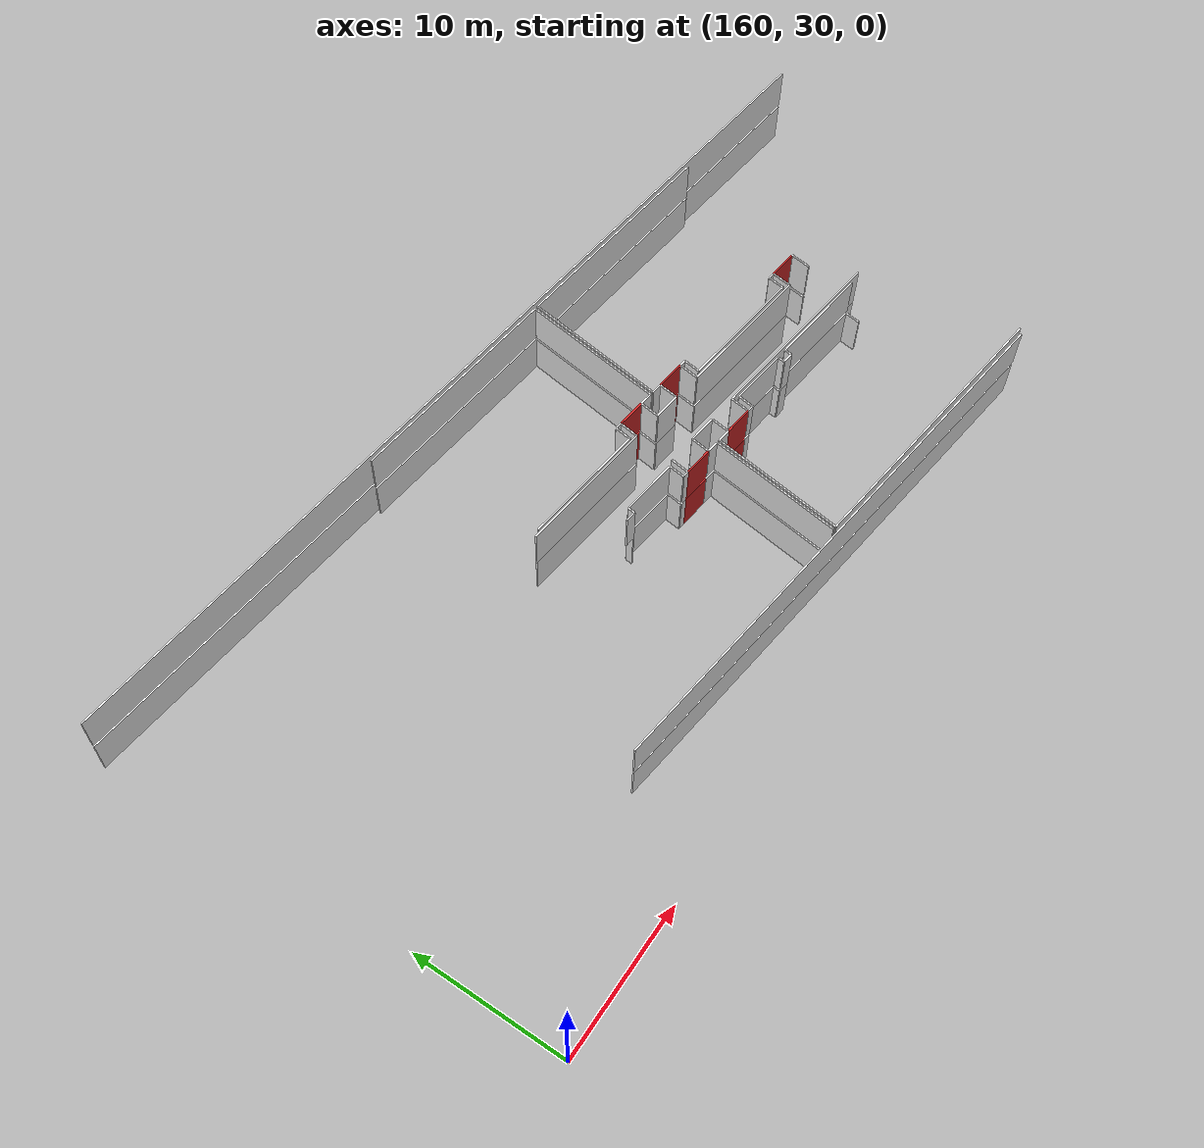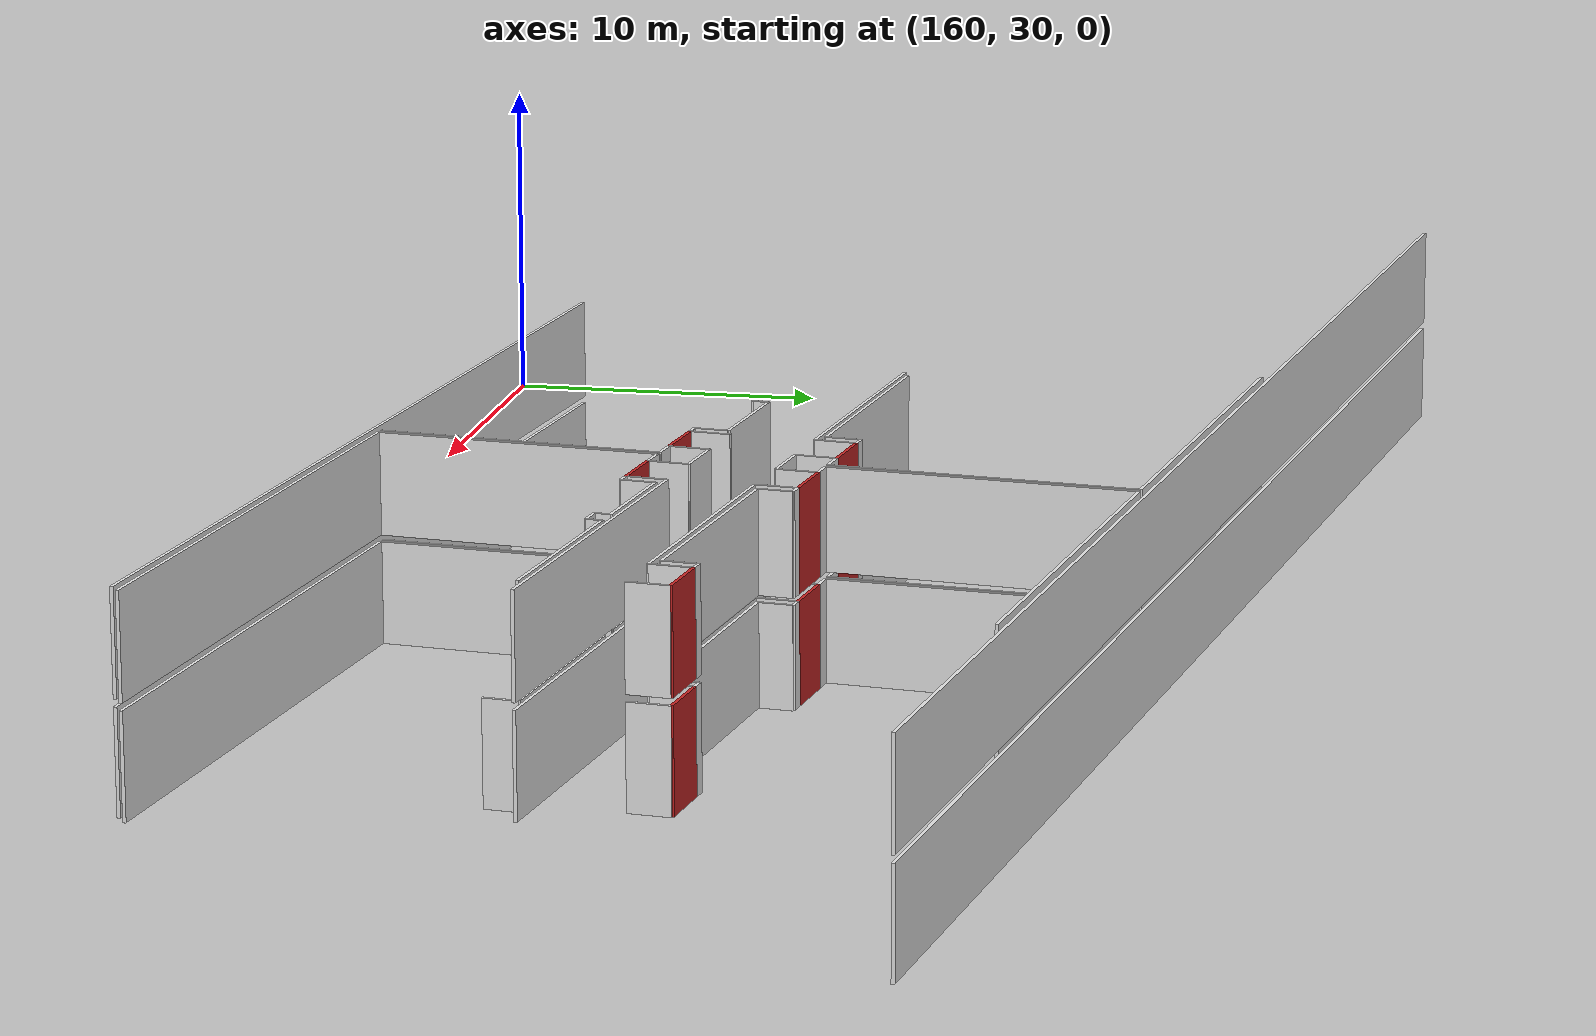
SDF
<sdf version="1.6">
 <world name="default">
  <model name="wall_191.0_47.1_0.0">
   <static>true</static>
   <pose>190.97500000000582 47.06499999994412 1.5 0 0 3.02480805813934</pose>
   <link name="link">
    <visual name="visual">
     <geometry><box><size>1.8022763383869123 0.1 3</size></box></geometry>
     <material>
      <script><uri>file://media/materials/scripts/gazebo.material</uri><name>Gazebo/Red</name></script>
     </material>
    </visual>
   </link>
  </model>
  <model name="wall_194.4_46.6_0.0">
   <static>true</static>
   <pose>194.41500000000815 46.64999999990687 1.5 0 0 3.0193009299849303</pose>
   <link name="link">
    <visual name="visual">
     <geometry><box><size>1.8034688796345346 0.1 3</size></box></geometry>
     <material>
      <script><uri>file://media/materials/scripts/gazebo.material</uri><name>Gazebo/Red</name></script>
     </material>
    </visual>
   </link>
  </model>
  <model name="wall_204.7_45.4_0.0">
   <static>true</static>
   <pose>204.74499999999534 45.40499999979511 1.5 0 0 3.0248080581431034</pose>
   <link name="link">
    <visual name="visual">
     <geometry><box><size>1.8022763384447233 0.1 3</size></box></geometry>
     <material>
      <script><uri>file://media/materials/scripts/gazebo.material</uri><name>Gazebo/Red</name></script>
     </material>
    </visual>
   </link>
  </model>
  <model name="wall_190.5_42.2_0.0">
   <static>true</static>
   <pose>190.5 42.18999999994412 1.5 0 0 -0.12161902311549111</pose>
   <link name="link">
    <visual name="visual">
     <geometry><box><size>1.8133946068224918 0.1 3</size></box></geometry>
     <material>
      <script><uri>file://media/materials/scripts/gazebo.material</uri><name>Gazebo/Red</name></script>
     </material>
    </visual>
   </link>
  </model>
  <model name="wall_194.0_41.8_0.0">
   <static>true</static>
   <pose>194.0350000000035 41.765000000130385 1.5 0 0 -0.11678459545045303</pose>
   <link name="link">
    <visual name="visual">
     <geometry><box><size>1.8022763383869123 0.1 3</size></box></geometry>
     <material>
      <script><uri>file://media/materials/scripts/gazebo.material</uri><name>Gazebo/Red</name></script>
     </material>
    </visual>
   </link>
  </model>
  <model name="wall_193.2_51.3_0.0">
   <static>true</static>
   <pose>193.20999999999185 51.294999999925494 1.5 0 0 -1.6919586614511988</pose>
   <link name="link">
    <visual name="visual">
     <geometry><box><size>8.93550782004122 0.1 3</size></box></geometry>
     <material>
      <script><uri>file://media/materials/scripts/gazebo.material</uri><name>Gazebo/White</name></script>
     </material>
    </visual>
   </link>
  </model>
  <model name="wall_192.3_46.9_0.0">
   <static>true</static>
   <pose>192.26999999998952 46.90999999991618 1.5 0 0 3.0172376589266166</pose>
   <link name="link">
    <visual name="visual">
     <geometry><box><size>0.806225774829855 0.1 3</size></box></geometry>
     <material>
      <script><uri>file://media/materials/scripts/gazebo.material</uri><name>Gazebo/White</name></script>
     </material>
    </visual>
   </link>
  </model>
  <model name="wall_189.9_47.2_0.0">
   <static>true</static>
   <pose>189.88000000000466 47.19500000006519 1.5 0 0 3.01723765836245</pose>
   <link name="link">
    <visual name="visual">
     <geometry><box><size>0.4031128874726857 0.1 3</size></box></geometry>
     <material>
      <script><uri>file://media/materials/scripts/gazebo.material</uri><name>Gazebo/White</name></script>
     </material>
    </visual>
   </link>
  </model>
  <model name="wall_189.6_46.7_0.0">
   <static>true</static>
   <pose>189.6149999999907 46.71000000019558 1.5 0 0 -1.6975638618984608</pose>
   <link name="link">
    <visual name="visual">
     <geometry><box><size>1.028250942153329 0.1 3</size></box></geometry>
     <material>
      <script><uri>file://media/materials/scripts/gazebo.material</uri><name>Gazebo/White</name></script>
     </material>
    </visual>
   </link>
  </model>
  <model name="wall_185.7_46.7_0.0">
   <static>true</static>
   <pose>185.67999999999302 46.66500000003725 1.5 0 0 3.0220108925195217</pose>
   <link name="link">
    <visual name="visual">
     <geometry><box><size>7.79567187606697 0.1 3</size></box></geometry>
     <material>
      <script><uri>file://media/materials/scripts/gazebo.material</uri><name>Gazebo/White</name></script>
     </material>
    </visual>
   </link>
  </model>
  <model name="wall_186.9_56.6_0.0">
   <static>true</static>
   <pose>186.89000000001397 56.56000000005588 1.5 0 0 -0.12040599336592878</pose>
   <link name="link">
    <visual name="visual">
     <geometry><box><size>13.820057886989042 0.1 3</size></box></geometry>
     <material>
      <script><uri>file://media/materials/scripts/gazebo.material</uri><name>Gazebo/White</name></script>
     </material>
    </visual>
   </link>
  </model>
  <model name="wall_203.7_45.5_0.0">
   <static>true</static>
   <pose>203.65499999999884 45.53499999991618 1.5 0 0 3.0140830946554305</pose>
   <link name="link">
    <visual name="visual">
     <geometry><box><size>0.39319206501840065 0.1 3</size></box></geometry>
     <material>
      <script><uri>file://media/materials/scripts/gazebo.material</uri><name>Gazebo/White</name></script>
     </material>
    </visual>
   </link>
  </model>
  <model name="wall_203.4_45.1_0.0">
   <static>true</static>
   <pose>203.39500000001863 45.050000000046566 1.5 0 0 -1.6975638618984608</pose>
   <link name="link">
    <visual name="visual">
     <geometry><box><size>1.028250942153329 0.1 3</size></box></geometry>
     <material>
      <script><uri>file://media/materials/scripts/gazebo.material</uri><name>Gazebo/White</name></script>
     </material>
    </visual>
   </link>
  </model>
  <model name="wall_199.5_45.0_0.0">
   <static>true</static>
   <pose>199.46000000002095 45.00500000012107 1.5 0 0 3.022010892460215</pose>
   <link name="link">
    <visual name="visual">
     <geometry><box><size>7.795671876122522 0.1 3</size></box></geometry>
     <material>
      <script><uri>file://media/materials/scripts/gazebo.material</uri><name>Gazebo/White</name></script>
     </material>
    </visual>
   </link>
  </model>
  <model name="wall_195.7_46.0_0.0">
   <static>true</static>
   <pose>195.65000000002328 45.980000000214204 1.5 0 0 1.4536875822346544</pose>
   <link name="link">
    <visual name="visual">
     <geometry><box><size>1.0270345661353761 0.1 3</size></box></geometry>
     <material>
      <script><uri>file://media/materials/scripts/gazebo.material</uri><name>Gazebo/White</name></script>
     </material>
    </visual>
   </link>
  </model>
  <model name="wall_195.5_46.5_0.0">
   <static>true</static>
   <pose>195.5100000000093 46.515000000130385 1.5 0 0 3.017237659508693</pose>
   <link name="link">
    <visual name="visual">
     <geometry><box><size>0.4031128874149275 0.1 3</size></box></geometry>
     <material>
      <script><uri>file://media/materials/scripts/gazebo.material</uri><name>Gazebo/White</name></script>
     </material>
    </visual>
   </link>
  </model>
  <model name="wall_193.2_46.8_0.0">
   <static>true</static>
   <pose>193.19500000000698 46.794999999925494 1.5 0 0 3.034313797491963</pose>
   <link name="link">
    <visual name="visual">
     <geometry><box><size>0.6537583652023057 0.1 3</size></box></geometry>
     <material>
      <script><uri>file://media/materials/scripts/gazebo.material</uri><name>Gazebo/White</name></script>
     </material>
    </visual>
   </link>
  </model>
  <model name="wall_193.4_51.3_0.0">
   <static>true</static>
   <pose>193.4100000000035 51.27000000001863 1.5 0 0 1.4497691069823746</pose>
   <link name="link">
    <visual name="visual">
     <geometry><box><size>8.945434589669212 0.1 3</size></box></geometry>
     <material>
      <script><uri>file://media/materials/scripts/gazebo.material</uri><name>Gazebo/White</name></script>
     </material>
    </visual>
   </link>
  </model>
  <model name="wall_200.8_54.9_0.0">
   <static>true</static>
   <pose>200.80499999999302 54.88500000000931 1.5 0 0 -0.1197740511061136</pose>
   <link name="link">
    <visual name="visual">
     <geometry><box><size>13.808931892028117 0.1 3</size></box></geometry>
     <material>
      <script><uri>file://media/materials/scripts/gazebo.material</uri><name>Gazebo/White</name></script>
     </material>
    </visual>
   </link>
  </model>
  <model name="wall_200.9_42.1_0.0">
   <static>true</static>
   <pose>200.94500000000698 42.140000000130385 1.5 0 0 3.0211217461725024</pose>
   <link name="link">
    <visual name="visual">
     <geometry><box><size>11.815637942969962 0.1 3</size></box></geometry>
     <material>
      <script><uri>file://media/materials/scripts/gazebo.material</uri><name>Gazebo/White</name></script>
     </material>
    </visual>
   </link>
  </model>
  <model name="wall_195.0_42.3_0.0">
   <static>true</static>
   <pose>195.00500000000466 42.25500000012107 1.5 0 0 -1.696185447161499</pose>
   <link name="link">
    <visual name="visual">
     <geometry><box><size>1.1994165247627664 0.1 3</size></box></geometry>
     <material>
      <script><uri>file://media/materials/scripts/gazebo.material</uri><name>Gazebo/White</name></script>
     </material>
    </visual>
   </link>
  </model>
  <model name="wall_193.2_42.5_0.0">
   <static>true</static>
   <pose>193.2149999999965 42.46500000008382 1.5 0 0 1.4454072064764434</pose>
   <link name="link">
    <visual name="visual">
     <geometry><box><size>1.199416524755487 0.1 3</size></box></geometry>
     <material>
      <script><uri>file://media/materials/scripts/gazebo.material</uri><name>Gazebo/White</name></script>
     </material>
    </visual>
   </link>
  </model>
  <model name="wall_192.4_43.2_0.0">
   <static>true</static>
   <pose>192.41499999997905 43.16500000003725 1.5 0 0 3.02216372759244</pose>
   <link name="link">
    <visual name="visual">
     <geometry><box><size>1.7625549636775455 0.1 3</size></box></geometry>
     <material>
      <script><uri>file://media/materials/scripts/gazebo.material</uri><name>Gazebo/White</name></script>
     </material>
    </visual>
   </link>
  </model>
  <model name="wall_191.5_42.7_0.0">
   <static>true</static>
   <pose>191.47000000000116 42.675000000046566 1.5 0 0 -1.6879050713305428</pose>
   <link name="link">
    <visual name="visual">
     <geometry><box><size>1.1982069937429929 0.1 3</size></box></geometry>
     <material>
      <script><uri>file://media/materials/scripts/gazebo.material</uri><name>Gazebo/White</name></script>
     </material>
    </visual>
   </link>
  </model>
  <model name="wall_189.7_42.9_0.0">
   <static>true</static>
   <pose>189.67499999998836 42.89500000001863 1.5 0 0 1.445407206476848</pose>
   <link name="link">
    <visual name="visual">
     <geometry><box><size>1.199416525224772 0.1 3</size></box></geometry>
     <material>
      <script><uri>file://media/materials/scripts/gazebo.material</uri><name>Gazebo/White</name></script>
     </material>
    </visual>
   </link>
  </model>
  <model name="wall_185.7_46.5_0.0">
   <static>true</static>
   <pose>185.65499999999884 46.47500000009313 1.5 0 0 -0.11989009554178759</pose>
   <link name="link">
    <visual name="visual">
     <geometry><box><size>8.611817462088831 0.1 3</size></box></geometry>
     <material>
      <script><uri>file://media/materials/scripts/gazebo.material</uri><name>Gazebo/White</name></script>
     </material>
    </visual>
   </link>
  </model>
  <model name="wall_190.0_46.6_0.0">
   <static>true</static>
   <pose>190.00500000000466 46.56499999994412 1.5 0 0 1.4474586258724629</pose>
   <link name="link">
    <visual name="visual">
     <geometry><box><size>1.2192620718766056 0.1 3</size></box></geometry>
     <material>
      <script><uri>file://media/materials/scripts/gazebo.material</uri><name>Gazebo/White</name></script>
     </material>
    </visual>
   </link>
  </model>
  <model name="wall_191.8_46.4_0.0">
   <static>true</static>
   <pose>191.7949999999837 46.35499999998137 1.5 0 0 -1.6941340277173305</pose>
   <link name="link">
    <visual name="visual">
     <geometry><box><size>1.2192620718766056 0.1 3</size></box></geometry>
     <material>
      <script><uri>file://media/materials/scripts/gazebo.material</uri><name>Gazebo/White</name></script>
     </material>
    </visual>
   </link>
  </model>
  <model name="wall_192.5_45.6_0.0">
   <static>true</static>
   <pose>192.54999999998836 45.64999999990687 1.5 0 0 -0.11990398547329398</pose>
   <link name="link">
    <visual name="visual">
     <geometry><box><size>1.6720047847367918 0.1 3</size></box></geometry>
     <material>
      <script><uri>file://media/materials/scripts/gazebo.material</uri><name>Gazebo/White</name></script>
     </material>
    </visual>
   </link>
  </model>
  <model name="wall_193.5_46.2_0.0">
   <static>true</static>
   <pose>193.45000000001164 46.15499999979511 1.5 0 0 1.4556060450873045</pose>
   <link name="link">
    <visual name="visual">
     <geometry><box><size>1.2180722474113592 0.1 3</size></box></geometry>
     <material>
      <script><uri>file://media/materials/scripts/gazebo.material</uri><name>Gazebo/White</name></script>
     </material>
    </visual>
   </link>
  </model>
  <model name="wall_195.2_45.9_0.0">
   <static>true</static>
   <pose>195.23499999998603 45.925000000046566 1.5 0 0 -1.692148327386132</pose>
   <link name="link">
    <visual name="visual">
     <geometry><box><size>1.239112585668132 0.1 3</size></box></geometry>
     <material>
      <script><uri>file://media/materials/scripts/gazebo.material</uri><name>Gazebo/White</name></script>
     </material>
    </visual>
   </link>
  </model>
  <model name="wall_199.4_44.8_0.0">
   <static>true</static>
   <pose>199.42999999999302 44.794999999925494 1.5 0 0 -0.12002913835868392</pose>
   <link name="link">
    <visual name="visual">
     <geometry><box><size>8.601889327419498 0.1 3</size></box></geometry>
     <material>
      <script><uri>file://media/materials/scripts/gazebo.material</uri><name>Gazebo/White</name></script>
     </material>
    </visual>
   </link>
  </model>
  <model name="wall_203.8_44.9_0.0">
   <static>true</static>
   <pose>203.77499999999418 44.894999999785796 1.5 0 0 1.4494443262502912</pose>
   <link name="link">
    <visual name="visual">
     <geometry><box><size>1.2391125856610858 0.1 3</size></box></geometry>
     <material>
      <script><uri>file://media/materials/scripts/gazebo.material</uri><name>Gazebo/White</name></script>
     </material>
    </visual>
   </link>
  </model>
  <model name="wall_205.6_44.7_0.0">
   <static>true</static>
   <pose>205.56500000000233 44.67999999993481 1.5 0 0 -1.6911791476372433</pose>
   <link name="link">
    <visual name="visual">
     <geometry><box><size>1.249039630839017 0.1 3</size></box></geometry>
     <material>
      <script><uri>file://media/materials/scripts/gazebo.material</uri><name>Gazebo/White</name></script>
     </material>
    </visual>
   </link>
  </model>
  <model name="wall_191.6_37.8_0.0">
   <static>true</static>
   <pose>191.64500000001863 37.83500000019558 1.5 0 0 1.449849231338217</pose>
   <link name="link">
    <visual name="visual">
     <geometry><box><size>8.371152847783126 0.1 3</size></box></geometry>
     <material>
      <script><uri>file://media/materials/scripts/gazebo.material</uri><name>Gazebo/White</name></script>
     </material>
    </visual>
   </link>
  </model>
  <model name="wall_191.8_42.0_0.0">
   <static>true</static>
   <pose>191.77500000002328 42.03500000014901 1.5 0 0 3.0221637277673166</pose>
   <link name="link">
    <visual name="visual">
     <geometry><box><size>0.7553806987030962 0.1 3</size></box></geometry>
     <material>
      <script><uri>file://media/materials/scripts/gazebo.material</uri><name>Gazebo/White</name></script>
     </material>
    </visual>
   </link>
  </model>
  <model name="wall_189.4_42.3_0.0">
   <static>true</static>
   <pose>189.40499999999884 42.31999999983236 1.5 0 0 3.039385935376501</pose>
   <link name="link">
    <visual name="visual">
     <geometry><box><size>0.3920459156380471 0.1 3</size></box></geometry>
     <material>
      <script><uri>file://media/materials/scripts/gazebo.material</uri><name>Gazebo/White</name></script>
     </material>
    </visual>
   </link>
  </model>
  <model name="wall_189.3_42.8_0.0">
   <static>true</static>
   <pose>189.27000000001863 42.83999999985099 1.5 0 0 1.4513674007811488</pose>
   <link name="link">
    <visual name="visual">
     <geometry><box><size>1.0071742649605788 0.1 3</size></box></geometry>
     <material>
      <script><uri>file://media/materials/scripts/gazebo.material</uri><name>Gazebo/White</name></script>
     </material>
    </visual>
   </link>
  </model>
  <model name="wall_187.6_43.6_0.0">
   <static>true</static>
   <pose>187.55500000002212 43.55499999993481 1.5 0 0 3.02105311047783</pose>
   <link name="link">
    <visual name="visual">
     <geometry><box><size>3.5759474269152105 0.1 3</size></box></geometry>
     <material>
      <script><uri>file://media/materials/scripts/gazebo.material</uri><name>Gazebo/White</name></script>
     </material>
    </visual>
   </link>
  </model>
  <model name="wall_185.8_43.5_0.0">
   <static>true</static>
   <pose>185.75500000000466 43.544999999925494 1.5 0 0 -1.6814535480255803</pose>
   <link name="link">
    <visual name="visual">
     <geometry><box><size>0.45276925709713844 0.1 3</size></box></geometry>
     <material>
      <script><uri>file://media/materials/scripts/gazebo.material</uri><name>Gazebo/White</name></script>
     </material>
    </visual>
   </link>
  </model>
  <model name="wall_192.7_41.9_0.0">
   <static>true</static>
   <pose>192.74499999999534 41.920000000158325 1.5 0 0 -0.12591262579595308</pose>
   <link name="link">
    <visual name="visual">
     <geometry><box><size>0.7963039621133917 0.1 3</size></box></geometry>
     <material>
      <script><uri>file://media/materials/scripts/gazebo.material</uri><name>Gazebo/White</name></script>
     </material>
    </visual>
   </link>
  </model>
  <model name="wall_195.1_41.6_0.0">
   <static>true</static>
   <pose>195.125 41.63500000000931 1.5 0 0 -0.12750955891553742</pose>
   <link name="link">
    <visual name="visual">
     <geometry><box><size>0.39319206507613574 0.1 3</size></box></geometry>
     <material>
      <script><uri>file://media/materials/scripts/gazebo.material</uri><name>Gazebo/White</name></script>
     </material>
    </visual>
   </link>
  </model>
  <model name="wall_195.4_42.1_0.0">
   <static>true</static>
   <pose>195.3850000000093 42.10499999998137 1.5 0 0 1.4402302320197897</pose>
   <link name="link">
    <visual name="visual">
     <geometry><box><size>0.9984988735315504 0.1 3</size></box></geometry>
     <material>
      <script><uri>file://media/materials/scripts/gazebo.material</uri><name>Gazebo/White</name></script>
     </material>
    </visual>
   </link>
  </model>
  <model name="wall_197.2_42.4_0.0">
   <static>true</static>
   <pose>197.22000000000116 42.390000000130385 1.5 0 0 -0.11809202839903185</pose>
   <link name="link">
    <visual name="visual">
     <geometry><box><size>3.5648281865735205 0.1 3</size></box></geometry>
     <material>
      <script><uri>file://media/materials/scripts/gazebo.material</uri><name>Gazebo/White</name></script>
     </material>
    </visual>
   </link>
  </model>
  <model name="wall_199.0_42.0_0.0">
   <static>true</static>
   <pose>198.9649999999965 41.950000000186265 1.5 0 0 -1.6790669176390405</pose>
   <link name="link">
    <visual name="visual">
     <geometry><box><size>0.46270941201207827 0.1 3</size></box></geometry>
     <material>
      <script><uri>file://media/materials/scripts/gazebo.material</uri><name>Gazebo/White</name></script>
     </material>
    </visual>
   </link>
  </model>
  <model name="wall_199.3_41.7_0.0">
   <static>true</static>
   <pose>199.26500000001397 41.68500000005588 1.5 0 0 -0.10727885609783018</pose>
   <link name="link">
    <visual name="visual">
     <geometry><box><size>0.6537583652023057 0.1 3</size></box></geometry>
     <material>
      <script><uri>file://media/materials/scripts/gazebo.material</uri><name>Gazebo/White</name></script>
     </material>
    </visual>
   </link>
  </model>
  <model name="wall_199.6_41.9_0.0">
   <static>true</static>
   <pose>199.6150000000198 41.875 1.5 0 0 1.460139105691986</pose>
   <link name="link">
    <visual name="visual">
     <geometry><box><size>0.45276925709071053 0.1 3</size></box></geometry>
     <material>
      <script><uri>file://media/materials/scripts/gazebo.material</uri><name>Gazebo/White</name></script>
     </material>
    </visual>
   </link>
  </model>
  <model name="wall_202.8_41.7_0.0">
   <static>true</static>
   <pose>202.7950000000128 41.71999999997206 1.5 0 0 -0.11986634401243841</pose>
   <link name="link">
    <visual name="visual">
     <geometry><box><size>6.3556038265721595 0.1 3</size></box></geometry>
     <material>
      <script><uri>file://media/materials/scripts/gazebo.material</uri><name>Gazebo/White</name></script>
     </material>
    </visual>
   </link>
  </model>
  <model name="wall_205.9_40.8_0.0">
   <static>true</static>
   <pose>205.89000000001397 40.83999999985099 1.5 0 0 -1.6902252528086446</pose>
   <link name="link">
    <visual name="visual">
     <geometry><box><size>1.0071742649605788 0.1 3</size></box></geometry>
     <material>
      <script><uri>file://media/materials/scripts/gazebo.material</uri><name>Gazebo/White</name></script>
     </material>
    </visual>
   </link>
  </model>
  <model name="wall_200.0_32.6_0.0">
   <static>true</static>
   <pose>200.0350000000035 32.61499999999069 1.5 0 0 3.0219823298861535</pose>
   <link name="link">
    <visual name="visual">
     <geometry><box><size>17.515142020542825 0.1 3</size></box></geometry>
     <material>
      <script><uri>file://media/materials/scripts/gazebo.material</uri><name>Gazebo/White</name></script>
     </material>
    </visual>
   </link>
  </model>
  <model name="wall_191.8_37.8_0.0">
   <static>true</static>
   <pose>191.84500000000116 37.81500000017695 1.5 0 0 1.4498492313451194</pose>
   <link name="link">
    <visual name="visual">
     <geometry><box><size>8.371152847776102 0.1 3</size></box></geometry>
     <material>
      <script><uri>file://media/materials/scripts/gazebo.material</uri><name>Gazebo/White</name></script>
     </material>
    </visual>
   </link>
  </model>
  <model name="wall_191.2_33.4_0.0">
   <static>true</static>
   <pose>191.20999999999185 33.389999999897555 1.5 0 0 -0.11970386529944234</pose>
   <link name="link">
    <visual name="visual">
     <geometry><box><size>34.668083304387594 0.1 3</size></box></geometry>
     <material>
      <script><uri>file://media/materials/scripts/gazebo.material</uri><name>Gazebo/White</name></script>
     </material>
    </visual>
   </link>
  </model>
  <model name="wall_188.0_56.7_0.0">
   <static>true</static>
   <pose>187.95000000001164 56.71500000008382 1.5 0 0 3.0216988150240605</pose>
   <link name="link">
    <visual name="visual">
     <geometry><box><size>58.943132763758996 0.1 3</size></box></geometry>
     <material>
      <script><uri>file://media/materials/scripts/gazebo.material</uri><name>Gazebo/White</name></script>
     </material>
    </visual>
   </link>
  </model>
  <model name="wall_191.0_47.1_3.2">
   <static>true</static>
   <pose>190.97500000000582 47.06499999994412 4.7 0 0 3.02480805813934</pose>
   <link name="link">
    <visual name="visual">
     <geometry><box><size>1.8022763383869123 0.1 3</size></box></geometry>
     <material>
      <script><uri>file://media/materials/scripts/gazebo.material</uri><name>Gazebo/Red</name></script>
     </material>
    </visual>
   </link>
  </model>
  <model name="wall_194.4_46.6_3.2">
   <static>true</static>
   <pose>194.41500000000815 46.64999999990687 4.7 0 0 3.0193009299849303</pose>
   <link name="link">
    <visual name="visual">
     <geometry><box><size>1.8034688796345346 0.1 3</size></box></geometry>
     <material>
      <script><uri>file://media/materials/scripts/gazebo.material</uri><name>Gazebo/Red</name></script>
     </material>
    </visual>
   </link>
  </model>
  <model name="wall_204.7_45.4_3.2">
   <static>true</static>
   <pose>204.74499999999534 45.40499999979511 4.7 0 0 3.0248080581431034</pose>
   <link name="link">
    <visual name="visual">
     <geometry><box><size>1.8022763384447233 0.1 3</size></box></geometry>
     <material>
      <script><uri>file://media/materials/scripts/gazebo.material</uri><name>Gazebo/Red</name></script>
     </material>
    </visual>
   </link>
  </model>
  <model name="wall_190.5_42.2_3.2">
   <static>true</static>
   <pose>190.5 42.18999999994412 4.7 0 0 -0.12161902311549111</pose>
   <link name="link">
    <visual name="visual">
     <geometry><box><size>1.8133946068224918 0.1 3</size></box></geometry>
     <material>
      <script><uri>file://media/materials/scripts/gazebo.material</uri><name>Gazebo/Red</name></script>
     </material>
    </visual>
   </link>
  </model>
  <model name="wall_194.0_41.8_3.2">
   <static>true</static>
   <pose>194.0350000000035 41.765000000130385 4.7 0 0 -0.11678459545045303</pose>
   <link name="link">
    <visual name="visual">
     <geometry><box><size>1.8022763383869123 0.1 3</size></box></geometry>
     <material>
      <script><uri>file://media/materials/scripts/gazebo.material</uri><name>Gazebo/Red</name></script>
     </material>
    </visual>
   </link>
  </model>
  <model name="wall_193.2_51.3_3.2">
   <static>true</static>
   <pose>193.20999999999185 51.294999999925494 4.7 0 0 -1.6919586614511988</pose>
   <link name="link">
    <visual name="visual">
     <geometry><box><size>8.93550782004122 0.1 3</size></box></geometry>
     <material>
      <script><uri>file://media/materials/scripts/gazebo.material</uri><name>Gazebo/White</name></script>
     </material>
    </visual>
   </link>
  </model>
  <model name="wall_192.3_46.9_3.2">
   <static>true</static>
   <pose>192.26999999998952 46.90999999991618 4.7 0 0 3.0172376589266166</pose>
   <link name="link">
    <visual name="visual">
     <geometry><box><size>0.806225774829855 0.1 3</size></box></geometry>
     <material>
      <script><uri>file://media/materials/scripts/gazebo.material</uri><name>Gazebo/White</name></script>
     </material>
    </visual>
   </link>
  </model>
  <model name="wall_189.9_47.2_3.2">
   <static>true</static>
   <pose>189.88000000000466 47.19500000006519 4.7 0 0 3.01723765836245</pose>
   <link name="link">
    <visual name="visual">
     <geometry><box><size>0.4031128874726857 0.1 3</size></box></geometry>
     <material>
      <script><uri>file://media/materials/scripts/gazebo.material</uri><name>Gazebo/White</name></script>
     </material>
    </visual>
   </link>
  </model>
  <model name="wall_189.6_46.7_3.2">
   <static>true</static>
   <pose>189.6149999999907 46.71000000019558 4.7 0 0 -1.6975638618984608</pose>
   <link name="link">
    <visual name="visual">
     <geometry><box><size>1.028250942153329 0.1 3</size></box></geometry>
     <material>
      <script><uri>file://media/materials/scripts/gazebo.material</uri><name>Gazebo/White</name></script>
     </material>
    </visual>
   </link>
  </model>
  <model name="wall_185.7_46.7_3.2">
   <static>true</static>
   <pose>185.67999999999302 46.66500000003725 4.7 0 0 3.0220108925195217</pose>
   <link name="link">
    <visual name="visual">
     <geometry><box><size>7.79567187606697 0.1 3</size></box></geometry>
     <material>
      <script><uri>file://media/materials/scripts/gazebo.material</uri><name>Gazebo/White</name></script>
     </material>
    </visual>
   </link>
  </model>
  <model name="wall_186.9_56.6_3.2">
   <static>true</static>
   <pose>186.89000000001397 56.56000000005588 4.7 0 0 -0.12040599336592878</pose>
   <link name="link">
    <visual name="visual">
     <geometry><box><size>13.820057886989042 0.1 3</size></box></geometry>
     <material>
      <script><uri>file://media/materials/scripts/gazebo.material</uri><name>Gazebo/White</name></script>
     </material>
    </visual>
   </link>
  </model>
  <model name="wall_203.7_45.5_3.2">
   <static>true</static>
   <pose>203.65499999999884 45.53499999991618 4.7 0 0 3.0140830946554305</pose>
   <link name="link">
    <visual name="visual">
     <geometry><box><size>0.39319206501840065 0.1 3</size></box></geometry>
     <material>
      <script><uri>file://media/materials/scripts/gazebo.material</uri><name>Gazebo/White</name></script>
     </material>
    </visual>
   </link>
  </model>
  <model name="wall_203.4_45.1_3.2">
   <static>true</static>
   <pose>203.39500000001863 45.050000000046566 4.7 0 0 -1.6975638618984608</pose>
   <link name="link">
    <visual name="visual">
     <geometry><box><size>1.028250942153329 0.1 3</size></box></geometry>
     <material>
      <script><uri>file://media/materials/scripts/gazebo.material</uri><name>Gazebo/White</name></script>
     </material>
    </visual>
   </link>
  </model>
  <model name="wall_199.5_45.0_3.2">
   <static>true</static>
   <pose>199.46000000002095 45.00500000012107 4.7 0 0 3.022010892460215</pose>
   <link name="link">
    <visual name="visual">
     <geometry><box><size>7.795671876122522 0.1 3</size></box></geometry>
     <material>
      <script><uri>file://media/materials/scripts/gazebo.material</uri><name>Gazebo/White</name></script>
     </material>
    </visual>
   </link>
  </model>
  <model name="wall_195.7_46.0_3.2">
   <static>true</static>
   <pose>195.65000000002328 45.980000000214204 4.7 0 0 1.4536875822346544</pose>
   <link name="link">
    <visual name="visual">
     <geometry><box><size>1.0270345661353761 0.1 3</size></box></geometry>
     <material>
      <script><uri>file://media/materials/scripts/gazebo.material</uri><name>Gazebo/White</name></script>
     </material>
    </visual>
   </link>
  </model>
  <model name="wall_195.5_46.5_3.2">
   <static>true</static>
   <pose>195.5100000000093 46.515000000130385 4.7 0 0 3.017237659508693</pose>
   <link name="link">
    <visual name="visual">
     <geometry><box><size>0.4031128874149275 0.1 3</size></box></geometry>
     <material>
      <script><uri>file://media/materials/scripts/gazebo.material</uri><name>Gazebo/White</name></script>
     </material>
    </visual>
   </link>
  </model>
  <model name="wall_193.2_46.8_3.2">
   <static>true</static>
   <pose>193.19500000000698 46.794999999925494 4.7 0 0 3.034313797491963</pose>
   <link name="link">
    <visual name="visual">
     <geometry><box><size>0.6537583652023057 0.1 3</size></box></geometry>
     <material>
      <script><uri>file://media/materials/scripts/gazebo.material</uri><name>Gazebo/White</name></script>
     </material>
    </visual>
   </link>
  </model>
  <model name="wall_193.4_51.3_3.2">
   <static>true</static>
   <pose>193.4100000000035 51.27000000001863 4.7 0 0 1.4497691069823746</pose>
   <link name="link">
    <visual name="visual">
     <geometry><box><size>8.945434589669212 0.1 3</size></box></geometry>
     <material>
      <script><uri>file://media/materials/scripts/gazebo.material</uri><name>Gazebo/White</name></script>
     </material>
    </visual>
   </link>
  </model>
  <model name="wall_200.8_54.9_3.2">
   <static>true</static>
   <pose>200.80499999999302 54.88500000000931 4.7 0 0 -0.1197740511061136</pose>
   <link name="link">
    <visual name="visual">
     <geometry><box><size>13.808931892028117 0.1 3</size></box></geometry>
     <material>
      <script><uri>file://media/materials/scripts/gazebo.material</uri><name>Gazebo/White</name></script>
     </material>
    </visual>
   </link>
  </model>
  <model name="wall_200.9_42.1_3.2">
   <static>true</static>
   <pose>200.94500000000698 42.140000000130385 4.7 0 0 3.0211217461725024</pose>
   <link name="link">
    <visual name="visual">
     <geometry><box><size>11.815637942969962 0.1 3</size></box></geometry>
     <material>
      <script><uri>file://media/materials/scripts/gazebo.material</uri><name>Gazebo/White</name></script>
     </material>
    </visual>
   </link>
  </model>
  <model name="wall_195.0_42.3_3.2">
   <static>true</static>
   <pose>195.00500000000466 42.25500000012107 4.7 0 0 -1.696185447161499</pose>
   <link name="link">
    <visual name="visual">
     <geometry><box><size>1.1994165247627664 0.1 3</size></box></geometry>
     <material>
      <script><uri>file://media/materials/scripts/gazebo.material</uri><name>Gazebo/White</name></script>
     </material>
    </visual>
   </link>
  </model>
  <model name="wall_193.2_42.5_3.2">
   <static>true</static>
   <pose>193.2149999999965 42.46500000008382 4.7 0 0 1.4454072064764434</pose>
   <link name="link">
    <visual name="visual">
     <geometry><box><size>1.199416524755487 0.1 3</size></box></geometry>
     <material>
      <script><uri>file://media/materials/scripts/gazebo.material</uri><name>Gazebo/White</name></script>
     </material>
    </visual>
   </link>
  </model>
  <model name="wall_192.4_43.2_3.2">
   <static>true</static>
   <pose>192.41499999997905 43.16500000003725 4.7 0 0 3.02216372759244</pose>
   <link name="link">
    <visual name="visual">
     <geometry><box><size>1.7625549636775455 0.1 3</size></box></geometry>
     <material>
      <script><uri>file://media/materials/scripts/gazebo.material</uri><name>Gazebo/White</name></script>
     </material>
    </visual>
   </link>
  </model>
  <model name="wall_191.5_42.7_3.2">
   <static>true</static>
   <pose>191.47000000000116 42.675000000046566 4.7 0 0 -1.6879050713305428</pose>
   <link name="link">
    <visual name="visual">
     <geometry><box><size>1.1982069937429929 0.1 3</size></box></geometry>
     <material>
      <script><uri>file://media/materials/scripts/gazebo.material</uri><name>Gazebo/White</name></script>
     </material>
    </visual>
   </link>
  </model>
  <model name="wall_189.7_42.9_3.2">
   <static>true</static>
   <pose>189.67499999998836 42.89500000001863 4.7 0 0 1.445407206476848</pose>
   <link name="link">
    <visual name="visual">
     <geometry><box><size>1.199416525224772 0.1 3</size></box></geometry>
     <material>
      <script><uri>file://media/materials/scripts/gazebo.material</uri><name>Gazebo/White</name></script>
     </material>
    </visual>
   </link>
  </model>
  <model name="wall_185.7_46.5_3.2">
   <static>true</static>
   <pose>185.65499999999884 46.47500000009313 4.7 0 0 -0.11989009554178759</pose>
   <link name="link">
    <visual name="visual">
     <geometry><box><size>8.611817462088831 0.1 3</size></box></geometry>
     <material>
      <script><uri>file://media/materials/scripts/gazebo.material</uri><name>Gazebo/White</name></script>
     </material>
    </visual>
   </link>
  </model>
  <model name="wall_190.0_46.6_3.2">
   <static>true</static>
   <pose>190.00500000000466 46.56499999994412 4.7 0 0 1.4474586258724629</pose>
   <link name="link">
    <visual name="visual">
     <geometry><box><size>1.2192620718766056 0.1 3</size></box></geometry>
     <material>
      <script><uri>file://media/materials/scripts/gazebo.material</uri><name>Gazebo/White</name></script>
     </material>
    </visual>
   </link>
  </model>
  <model name="wall_191.8_46.4_3.2">
   <static>true</static>
   <pose>191.7949999999837 46.35499999998137 4.7 0 0 -1.6941340277173305</pose>
   <link name="link">
    <visual name="visual">
     <geometry><box><size>1.2192620718766056 0.1 3</size></box></geometry>
     <material>
      <script><uri>file://media/materials/scripts/gazebo.material</uri><name>Gazebo/White</name></script>
     </material>
    </visual>
   </link>
  </model>
  <model name="wall_192.5_45.6_3.2">
   <static>true</static>
   <pose>192.54999999998836 45.64999999990687 4.7 0 0 -0.11990398547329398</pose>
   <link name="link">
    <visual name="visual">
     <geometry><box><size>1.6720047847367918 0.1 3</size></box></geometry>
     <material>
      <script><uri>file://media/materials/scripts/gazebo.material</uri><name>Gazebo/White</name></script>
     </material>
    </visual>
   </link>
  </model>
  <model name="wall_193.5_46.2_3.2">
   <static>true</static>
   <pose>193.45000000001164 46.15499999979511 4.7 0 0 1.4556060450873045</pose>
   <link name="link">
    <visual name="visual">
     <geometry><box><size>1.2180722474113592 0.1 3</size></box></geometry>
     <material>
      <script><uri>file://media/materials/scripts/gazebo.material</uri><name>Gazebo/White</name></script>
     </material>
    </visual>
   </link>
  </model>
  <model name="wall_195.2_45.9_3.2">
   <static>true</static>
   <pose>195.23499999998603 45.925000000046566 4.7 0 0 -1.692148327386132</pose>
   <link name="link">
    <visual name="visual">
     <geometry><box><size>1.239112585668132 0.1 3</size></box></geometry>
     <material>
      <script><uri>file://media/materials/scripts/gazebo.material</uri><name>Gazebo/White</name></script>
     </material>
    </visual>
   </link>
  </model>
  <model name="wall_199.4_44.8_3.2">
   <static>true</static>
   <pose>199.42999999999302 44.794999999925494 4.7 0 0 -0.12002913835868392</pose>
   <link name="link">
    <visual name="visual">
     <geometry><box><size>8.601889327419498 0.1 3</size></box></geometry>
     <material>
      <script><uri>file://media/materials/scripts/gazebo.material</uri><name>Gazebo/White</name></script>
     </material>
    </visual>
   </link>
  </model>
  <model name="wall_203.8_44.9_3.2">
   <static>true</static>
   <pose>203.77499999999418 44.894999999785796 4.7 0 0 1.4494443262502912</pose>
   <link name="link">
    <visual name="visual">
     <geometry><box><size>1.2391125856610858 0.1 3</size></box></geometry>
     <material>
      <script><uri>file://media/materials/scripts/gazebo.material</uri><name>Gazebo/White</name></script>
     </material>
    </visual>
   </link>
  </model>
  <model name="wall_205.6_44.7_3.2">
   <static>true</static>
   <pose>205.56500000000233 44.67999999993481 4.7 0 0 -1.6911791476372433</pose>
   <link name="link">
    <visual name="visual">
     <geometry><box><size>1.249039630839017 0.1 3</size></box></geometry>
     <material>
      <script><uri>file://media/materials/scripts/gazebo.material</uri><name>Gazebo/White</name></script>
     </material>
    </visual>
   </link>
  </model>
  <model name="wall_185.4_43.4_3.2">
   <static>true</static>
   <pose>185.40499999999884 43.359999999869615 4.7 0 0 3.0191315960530236</pose>
   <link name="link">
    <visual name="visual">
     <geometry><box><size>0.6549045731757559 0.1 3</size></box></geometry>
     <material>
      <script><uri>file://media/materials/scripts/gazebo.material</uri><name>Gazebo/White</name></script>
     </material>
    </visual>
   </link>
  </model>
  <model name="wall_191.6_37.8_3.2">
   <static>true</static>
   <pose>191.64500000001863 37.83500000019558 4.7 0 0 1.449849231338217</pose>
   <link name="link">
    <visual name="visual">
     <geometry><box><size>8.371152847783126 0.1 3</size></box></geometry>
     <material>
      <script><uri>file://media/materials/scripts/gazebo.material</uri><name>Gazebo/White</name></script>
     </material>
    </visual>
   </link>
  </model>
  <model name="wall_191.8_42.0_3.2">
   <static>true</static>
   <pose>191.77500000002328 42.03500000014901 4.7 0 0 3.0221637277673166</pose>
   <link name="link">
    <visual name="visual">
     <geometry><box><size>0.7553806987030962 0.1 3</size></box></geometry>
     <material>
      <script><uri>file://media/materials/scripts/gazebo.material</uri><name>Gazebo/White</name></script>
     </material>
    </visual>
   </link>
  </model>
  <model name="wall_189.4_42.3_3.2">
   <static>true</static>
   <pose>189.40499999999884 42.31999999983236 4.7 0 0 3.039385935376501</pose>
   <link name="link">
    <visual name="visual">
     <geometry><box><size>0.3920459156380471 0.1 3</size></box></geometry>
     <material>
      <script><uri>file://media/materials/scripts/gazebo.material</uri><name>Gazebo/White</name></script>
     </material>
    </visual>
   </link>
  </model>
  <model name="wall_189.3_42.8_3.2">
   <static>true</static>
   <pose>189.27000000001863 42.83999999985099 4.7 0 0 1.4513674007811488</pose>
   <link name="link">
    <visual name="visual">
     <geometry><box><size>1.0071742649605788 0.1 3</size></box></geometry>
     <material>
      <script><uri>file://media/materials/scripts/gazebo.material</uri><name>Gazebo/White</name></script>
     </material>
    </visual>
   </link>
  </model>
  <model name="wall_187.6_43.6_3.2">
   <static>true</static>
   <pose>187.55500000002212 43.55499999993481 4.7 0 0 3.02105311047783</pose>
   <link name="link">
    <visual name="visual">
     <geometry><box><size>3.5759474269152105 0.1 3</size></box></geometry>
     <material>
      <script><uri>file://media/materials/scripts/gazebo.material</uri><name>Gazebo/White</name></script>
     </material>
    </visual>
   </link>
  </model>
  <model name="wall_185.8_43.5_3.2">
   <static>true</static>
   <pose>185.75500000000466 43.544999999925494 4.7 0 0 -1.6814535480255803</pose>
   <link name="link">
    <visual name="visual">
     <geometry><box><size>0.45276925709713844 0.1 3</size></box></geometry>
     <material>
      <script><uri>file://media/materials/scripts/gazebo.material</uri><name>Gazebo/White</name></script>
     </material>
    </visual>
   </link>
  </model>
  <model name="wall_192.7_41.9_3.2">
   <static>true</static>
   <pose>192.74499999999534 41.920000000158325 4.7 0 0 -0.12591262579595308</pose>
   <link name="link">
    <visual name="visual">
     <geometry><box><size>0.7963039621133917 0.1 3</size></box></geometry>
     <material>
      <script><uri>file://media/materials/scripts/gazebo.material</uri><name>Gazebo/White</name></script>
     </material>
    </visual>
   </link>
  </model>
  <model name="wall_195.1_41.6_3.2">
   <static>true</static>
   <pose>195.125 41.63500000000931 4.7 0 0 -0.12750955891553742</pose>
   <link name="link">
    <visual name="visual">
     <geometry><box><size>0.39319206507613574 0.1 3</size></box></geometry>
     <material>
      <script><uri>file://media/materials/scripts/gazebo.material</uri><name>Gazebo/White</name></script>
     </material>
    </visual>
   </link>
  </model>
  <model name="wall_195.4_42.1_3.2">
   <static>true</static>
   <pose>195.3850000000093 42.10499999998137 4.7 0 0 1.4402302320197897</pose>
   <link name="link">
    <visual name="visual">
     <geometry><box><size>0.9984988735315504 0.1 3</size></box></geometry>
     <material>
      <script><uri>file://media/materials/scripts/gazebo.material</uri><name>Gazebo/White</name></script>
     </material>
    </visual>
   </link>
  </model>
  <model name="wall_197.2_42.4_3.2">
   <static>true</static>
   <pose>197.22000000000116 42.390000000130385 4.7 0 0 -0.11809202839903185</pose>
   <link name="link">
    <visual name="visual">
     <geometry><box><size>3.5648281865735205 0.1 3</size></box></geometry>
     <material>
      <script><uri>file://media/materials/scripts/gazebo.material</uri><name>Gazebo/White</name></script>
     </material>
    </visual>
   </link>
  </model>
  <model name="wall_199.0_42.0_3.2">
   <static>true</static>
   <pose>198.9649999999965 41.950000000186265 4.7 0 0 -1.6790669176390405</pose>
   <link name="link">
    <visual name="visual">
     <geometry><box><size>0.46270941201207827 0.1 3</size></box></geometry>
     <material>
      <script><uri>file://media/materials/scripts/gazebo.material</uri><name>Gazebo/White</name></script>
     </material>
    </visual>
   </link>
  </model>
  <model name="wall_199.3_41.7_3.2">
   <static>true</static>
   <pose>199.26500000001397 41.68500000005588 4.7 0 0 -0.10727885609783018</pose>
   <link name="link">
    <visual name="visual">
     <geometry><box><size>0.6537583652023057 0.1 3</size></box></geometry>
     <material>
      <script><uri>file://media/materials/scripts/gazebo.material</uri><name>Gazebo/White</name></script>
     </material>
    </visual>
   </link>
  </model>
  <model name="wall_199.6_41.9_3.2">
   <static>true</static>
   <pose>199.6150000000198 41.875 4.7 0 0 1.460139105691986</pose>
   <link name="link">
    <visual name="visual">
     <geometry><box><size>0.45276925709071053 0.1 3</size></box></geometry>
     <material>
      <script><uri>file://media/materials/scripts/gazebo.material</uri><name>Gazebo/White</name></script>
     </material>
    </visual>
   </link>
  </model>
  <model name="wall_202.8_41.7_3.2">
   <static>true</static>
   <pose>202.7950000000128 41.71999999997206 4.7 0 0 -0.11986634401243841</pose>
   <link name="link">
    <visual name="visual">
     <geometry><box><size>6.3556038265721595 0.1 3</size></box></geometry>
     <material>
      <script><uri>file://media/materials/scripts/gazebo.material</uri><name>Gazebo/White</name></script>
     </material>
    </visual>
   </link>
  </model>
  <model name="wall_200.0_32.6_3.2">
   <static>true</static>
   <pose>200.0350000000035 32.61499999999069 4.7 0 0 3.0219823298861535</pose>
   <link name="link">
    <visual name="visual">
     <geometry><box><size>17.515142020542825 0.1 3</size></box></geometry>
     <material>
      <script><uri>file://media/materials/scripts/gazebo.material</uri><name>Gazebo/White</name></script>
     </material>
    </visual>
   </link>
  </model>
  <model name="wall_191.8_37.8_3.2">
   <static>true</static>
   <pose>191.84500000000116 37.81500000017695 4.7 0 0 1.4498492313451194</pose>
   <link name="link">
    <visual name="visual">
     <geometry><box><size>8.371152847776102 0.1 3</size></box></geometry>
     <material>
      <script><uri>file://media/materials/scripts/gazebo.material</uri><name>Gazebo/White</name></script>
     </material>
    </visual>
   </link>
  </model>
  <model name="wall_191.2_33.4_3.2">
   <static>true</static>
   <pose>191.20999999999185 33.389999999897555 4.7 0 0 -0.11970386529944234</pose>
   <link name="link">
    <visual name="visual">
     <geometry><box><size>34.668083304387594 0.1 3</size></box></geometry>
     <material>
      <script><uri>file://media/materials/scripts/gazebo.material</uri><name>Gazebo/White</name></script>
     </material>
    </visual>
   </link>
  </model>
  <model name="wall_188.0_56.7_3.2">
   <static>true</static>
   <pose>187.95000000001164 56.71500000008382 4.7 0 0 3.0216988150240605</pose>
   <link name="link">
    <visual name="visual">
     <geometry><box><size>58.943132763758996 0.1 3</size></box></geometry>
     <material>
      <script><uri>file://media/materials/scripts/gazebo.material</uri><name>Gazebo/White</name></script>
     </material>
    </visual>
   </link>
  </model>
 </world>
</sdf>
